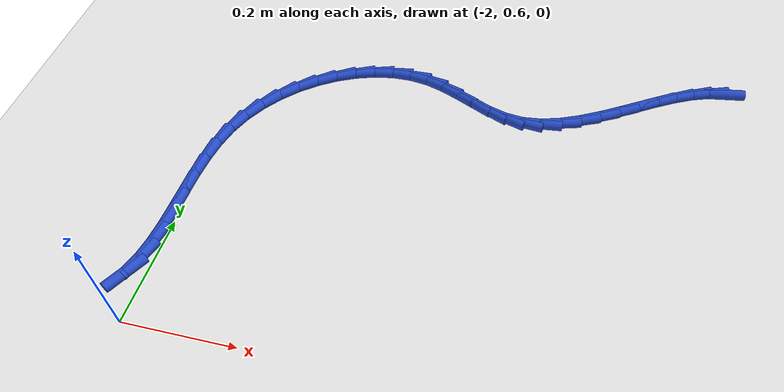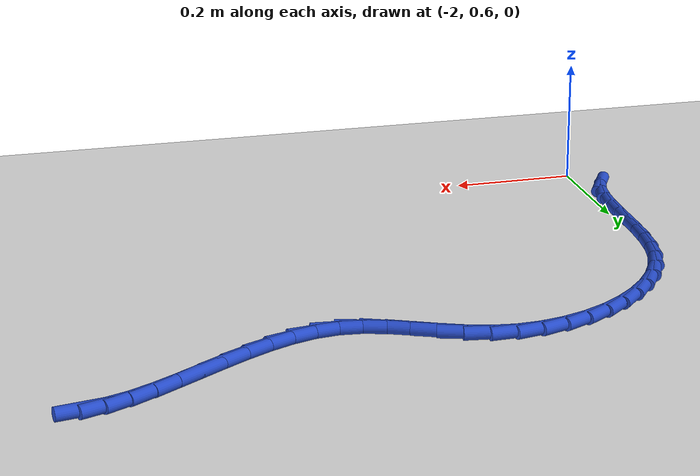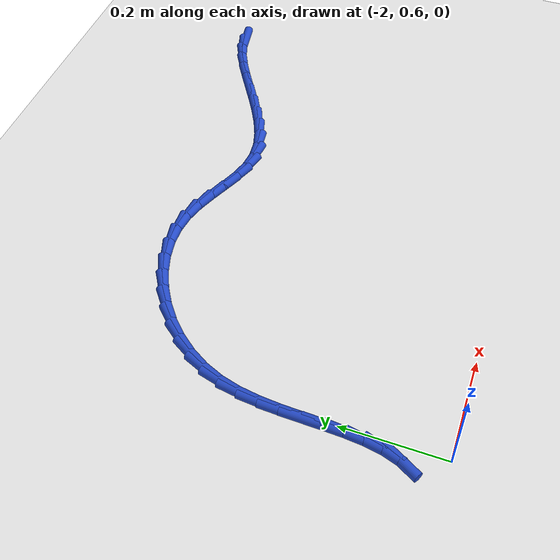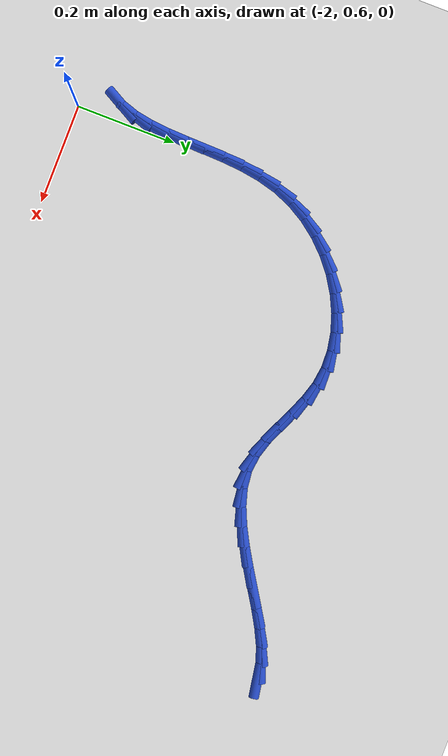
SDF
<sdf version="1.6">
 <world name="default">
  <model name="ground_plane">
   <static>1</static>
   <link name="link">
    <collision name="collision">
     <geometry><plane><normal>0 0 1</normal><size>100 100</size></plane></geometry>
     <surface><friction><ode><mu>100</mu><mu2>50</mu2></ode></friction></surface>
    </collision>
    <visual name="visual">
     <cast_shadows>0</cast_shadows>
     <geometry><plane><normal>0 0 1</normal><size>100 100</size></plane></geometry>
     <material>
      <script><uri>file://media/materials/scripts/gazebo.material</uri><name>Gazebo/WhiteGlow</name></script>
     </material>
    </visual>
   </link>
  </model>
  <model name="line">
   <link name="link_55">
    <pose>-1.0874645526092437 1.3264163241942417 0.01 0 1.57 0.16464403361150992</pose>
    <collision name="collision">
     <geometry><cylinder><radius>0.01</radius><length>0.08</length></cylinder></geometry>
    </collision>
    <visual name="visual">
     <material>
      <script><name>Gazebo/Blue</name><uri>file://media/materials/scripts/gazebo.material</uri></script>
     </material>
     <geometry><cylinder><radius>0.01</radius><length>0.08</length></cylinder></geometry>
    </visual>
   </link>
   <link name="link_56">
    <pose>-1.1166549831075208 1.321566391130453 0.01 0 1.57 0.34586061049891365</pose>
    <collision name="collision">
     <geometry><cylinder><radius>0.01</radius><length>0.08</length></cylinder></geometry>
    </collision>
    <visual name="visual">
     <material>
      <script><name>Gazebo/Blue</name><uri>file://media/materials/scripts/gazebo.material</uri></script>
     </material>
     <geometry><cylinder><radius>0.01</radius><length>0.08</length></cylinder></geometry>
    </visual>
   </link>
   <link name="link_57">
    <pose>-1.147344084330397 1.3105077392368027 0.01 0 1.57 0.4607003016405857</pose>
    <collision name="collision">
     <geometry><cylinder><radius>0.01</radius><length>0.08</length></cylinder></geometry>
    </collision>
    <visual name="visual">
     <material>
      <script><name>Gazebo/Blue</name><uri>file://media/materials/scripts/gazebo.material</uri></script>
     </material>
     <geometry><cylinder><radius>0.01</radius><length>0.08</length></cylinder></geometry>
    </visual>
   </link>
   <link name="link_58">
    <pose>-1.1793160176548019 1.2946393884830552 0.01 0 1.57 0.5282172132101465</pose>
    <collision name="collision">
     <geometry><cylinder><radius>0.01</radius><length>0.08</length></cylinder></geometry>
    </collision>
    <visual name="visual">
     <material>
      <script><name>Gazebo/Blue</name><uri>file://media/materials/scripts/gazebo.material</uri></script>
     </material>
     <geometry><cylinder><radius>0.01</radius><length>0.08</length></cylinder></geometry>
    </visual>
   </link>
   <link name="link_59">
    <pose>-1.2123549444576678 1.2753603588389746 0.01 0 1.57 0.5609170025685546</pose>
    <collision name="collision">
     <geometry><cylinder><radius>0.01</radius><length>0.08</length></cylinder></geometry>
    </collision>
    <visual name="visual">
     <material>
      <script><name>Gazebo/Blue</name><uri>file://media/materials/scripts/gazebo.material</uri></script>
     </material>
     <geometry><cylinder><radius>0.01</radius><length>0.08</length></cylinder></geometry>
    </visual>
   </link>
   <link name="link_60">
    <pose>-1.2462450261159246 1.254069670274325 0.01 0 1.57 0.5653388998060731</pose>
    <collision name="collision">
     <geometry><cylinder><radius>0.01</radius><length>0.08</length></cylinder></geometry>
    </collision>
    <visual name="visual">
     <material>
      <script><name>Gazebo/Blue</name><uri>file://media/materials/scripts/gazebo.material</uri></script>
     </material>
     <geometry><cylinder><radius>0.01</radius><length>0.08</length></cylinder></geometry>
    </visual>
   </link>
   <link name="link_61">
    <pose>-1.2807704240065036 1.23216634275887 0.01 0 1.57 0.5435701999124434</pose>
    <collision name="collision">
     <geometry><cylinder><radius>0.01</radius><length>0.08</length></cylinder></geometry>
    </collision>
    <visual name="visual">
     <material>
      <script><name>Gazebo/Blue</name><uri>file://media/materials/scripts/gazebo.material</uri></script>
     </material>
     <geometry><cylinder><radius>0.01</radius><length>0.08</length></cylinder></geometry>
    </visual>
   </link>
   <link name="link_62">
    <pose>-1.3157152995063355 1.2110493962623747 0.01 0 1.57 0.4940609550055763</pose>
    <collision name="collision">
     <geometry><cylinder><radius>0.01</radius><length>0.08</length></cylinder></geometry>
    </collision>
    <visual name="visual">
     <material>
      <script><name>Gazebo/Blue</name><uri>file://media/materials/scripts/gazebo.material</uri></script>
     </material>
     <geometry><cylinder><radius>0.01</radius><length>0.08</length></cylinder></geometry>
    </visual>
   </link>
   <link name="link_63">
    <pose>-1.3508638139923517 1.1921178507546024 0.01 0 1.57 0.4118127644955454</pose>
    <collision name="collision">
     <geometry><cylinder><radius>0.01</radius><length>0.08</length></cylinder></geometry>
    </collision>
    <visual name="visual">
     <material>
      <script><name>Gazebo/Blue</name><uri>file://media/materials/scripts/gazebo.material</uri></script>
     </material>
     <geometry><cylinder><radius>0.01</radius><length>0.08</length></cylinder></geometry>
    </visual>
   </link>
   <link name="link_64">
    <pose>-1.3860001288414825 1.176770726205318 0.01 0 1.57 0.28859497038842274</pose>
    <collision name="collision">
     <geometry><cylinder><radius>0.01</radius><length>0.08</length></cylinder></geometry>
    </collision>
    <visual name="visual">
     <material>
      <script><name>Gazebo/Blue</name><uri>file://media/materials/scripts/gazebo.material</uri></script>
     </material>
     <geometry><cylinder><radius>0.01</radius><length>0.08</length></cylinder></geometry>
    </visual>
   </link>
   <link name="link_65">
    <pose>-1.4209084054306593 1.1664070425842852 0.01 0 1.57 0.11500721039546787</pose>
    <collision name="collision">
     <geometry><cylinder><radius>0.01</radius><length>0.08</length></cylinder></geometry>
    </collision>
    <visual name="visual">
     <material>
      <script><name>Gazebo/Blue</name><uri>file://media/materials/scripts/gazebo.material</uri></script>
     </material>
     <geometry><cylinder><radius>0.01</radius><length>0.08</length></cylinder></geometry>
    </visual>
   </link>
   <link name="link_66">
    <pose>-1.4553728051368124 1.1624258198612671 0.01 0 1.57 -0.10520899492809196</pose>
    <collision name="collision">
     <geometry><cylinder><radius>0.01</radius><length>0.08</length></cylinder></geometry>
    </collision>
    <visual name="visual">
     <material>
      <script><name>Gazebo/Blue</name><uri>file://media/materials/scripts/gazebo.material</uri></script>
     </material>
     <geometry><cylinder><radius>0.01</radius><length>0.08</length></cylinder></geometry>
    </visual>
   </link>
   <link name="link_67">
    <pose>-1.4892094859385194 1.1659989363072776 0.01 0 1.57 -0.29095171063610425</pose>
    <collision name="collision">
     <geometry><cylinder><radius>0.01</radius><length>0.08</length></cylinder></geometry>
    </collision>
    <visual name="visual">
     <material>
      <script><name>Gazebo/Blue</name><uri>file://media/materials/scripts/gazebo.material</uri></script>
     </material>
     <geometry><cylinder><radius>0.01</radius><length>0.08</length></cylinder></geometry>
    </visual>
   </link>
   <link name="link_68">
    <pose>-1.522560349608142 1.1759858371575802 0.01 0 1.57 -0.3968031191720669</pose>
    <collision name="collision">
     <geometry><cylinder><radius>0.01</radius><length>0.08</length></cylinder></geometry>
    </collision>
    <visual name="visual">
     <material>
      <script><name>Gazebo/Blue</name><uri>file://media/materials/scripts/gazebo.material</uri></script>
     </material>
     <geometry><cylinder><radius>0.01</radius><length>0.08</length></cylinder></geometry>
    </visual>
   </link>
   <link name="link_69">
    <pose>-1.5557574066739857 1.1898963985197284 0.01 0 1.57 -0.430483257738452</pose>
    <collision name="collision">
     <geometry><cylinder><radius>0.01</radius><length>0.08</length></cylinder></geometry>
    </collision>
    <visual name="visual">
     <material>
      <script><name>Gazebo/Blue</name><uri>file://media/materials/scripts/gazebo.material</uri></script>
     </material>
     <geometry><cylinder><radius>0.01</radius><length>0.08</length></cylinder></geometry>
    </visual>
   </link>
   <link name="link_70">
    <pose>-1.589135046029348 1.2052236126499996 0.01 0 1.57 -0.39767721714755344</pose>
    <collision name="collision">
     <geometry><cylinder><radius>0.01</radius><length>0.08</length></cylinder></geometry>
    </collision>
    <visual name="visual">
     <material>
      <script><name>Gazebo/Blue</name><uri>file://media/materials/scripts/gazebo.material</uri></script>
     </material>
     <geometry><cylinder><radius>0.01</radius><length>0.08</length></cylinder></geometry>
    </visual>
   </link>
   <link name="link_71">
    <pose>-1.6230276565675221 1.2194604718046695 0.01 0 1.57 -0.29717472348617013</pose>
    <collision name="collision">
     <geometry><cylinder><radius>0.01</radius><length>0.08</length></cylinder></geometry>
    </collision>
    <visual name="visual">
     <material>
      <script><name>Gazebo/Blue</name><uri>file://media/materials/scripts/gazebo.material</uri></script>
     </material>
     <geometry><cylinder><radius>0.01</radius><length>0.08</length></cylinder></geometry>
    </visual>
   </link>
   <link name="link_72">
    <pose>-1.6577696271818045 1.2300999682400158 0.01 0 1.57 -0.13508129840582114</pose>
    <collision name="collision">
     <geometry><cylinder><radius>0.01</radius><length>0.08</length></cylinder></geometry>
    </collision>
    <visual name="visual">
     <material>
      <script><name>Gazebo/Blue</name><uri>file://media/materials/scripts/gazebo.material</uri></script>
     </material>
     <geometry><cylinder><radius>0.01</radius><length>0.08</length></cylinder></geometry>
    </visual>
   </link>
   <link name="link_73">
    <pose>-1.6935872632900912 1.2349679054588667 0.01 0 1.57 0.03197174831315225</pose>
    <collision name="collision">
     <geometry><cylinder><radius>0.01</radius><length>0.08</length></cylinder></geometry>
    </collision>
    <visual name="visual">
     <material>
      <script><name>Gazebo/Blue</name><uri>file://media/materials/scripts/gazebo.material</uri></script>
     </material>
     <geometry><cylinder><radius>0.01</radius><length>0.08</length></cylinder></geometry>
    </visual>
   </link>
   <link name="link_74">
    <pose>-1.7300864249963273 1.2338005656713136 0.01 0 1.57 0.18349414591373775</pose>
    <collision name="collision">
     <geometry><cylinder><radius>0.01</radius><length>0.08</length></cylinder></geometry>
    </collision>
    <visual name="visual">
     <material>
      <script><name>Gazebo/Blue</name><uri>file://media/materials/scripts/gazebo.material</uri></script>
     </material>
     <geometry><cylinder><radius>0.01</radius><length>0.08</length></cylinder></geometry>
    </visual>
   </link>
   <link name="link_75">
    <pose>-1.7666519951653212 1.2270146654475056 0.01 0 1.57 0.3212852747612042</pose>
    <collision name="collision">
     <geometry><cylinder><radius>0.01</radius><length>0.08</length></cylinder></geometry>
    </collision>
    <visual name="visual">
     <material>
      <script><name>Gazebo/Blue</name><uri>file://media/materials/scripts/gazebo.material</uri></script>
     </material>
     <geometry><cylinder><radius>0.01</radius><length>0.08</length></cylinder></geometry>
    </visual>
   </link>
   <link name="link_76">
    <pose>-1.8026685869960055 1.2150277517142882 0.01 0 1.57 0.4484829018805257</pose>
    <collision name="collision">
     <geometry><cylinder><radius>0.01</radius><length>0.08</length></cylinder></geometry>
    </collision>
    <visual name="visual">
     <material>
      <script><name>Gazebo/Blue</name><uri>file://media/materials/scripts/gazebo.material</uri></script>
     </material>
     <geometry><cylinder><radius>0.01</radius><length>0.08</length></cylinder></geometry>
    </visual>
   </link>
   <link name="link_77">
    <pose>-1.8375208136873113 1.1982573713985074 0.01 0 1.57 0.5686676105384731</pose>
    <collision name="collision">
     <geometry><cylinder><radius>0.01</radius><length>0.08</length></cylinder></geometry>
    </collision>
    <visual name="visual">
     <material>
      <script><name>Gazebo/Blue</name><uri>file://media/materials/scripts/gazebo.material</uri></script>
     </material>
     <geometry><cylinder><radius>0.01</radius><length>0.08</length></cylinder></geometry>
    </visual>
   </link>
   <link name="link_78">
    <pose>-1.8705932884381704 1.1771210714270073 0.01 0 1.57 0.6854372157209035</pose>
    <collision name="collision">
     <geometry><cylinder><radius>0.01</radius><length>0.08</length></cylinder></geometry>
    </collision>
    <visual name="visual">
     <material>
      <script><name>Gazebo/Blue</name><uri>file://media/materials/scripts/gazebo.material</uri></script>
     </material>
     <geometry><cylinder><radius>0.01</radius><length>0.08</length></cylinder></geometry>
    </visual>
   </link>
   <link name="link_79">
    <pose>-1.901270624447514 1.1520363987266333 0.01 0 1.57 0.8022524506681019</pose>
    <collision name="collision">
     <geometry><cylinder><radius>0.01</radius><length>0.08</length></cylinder></geometry>
    </collision>
    <visual name="visual">
     <material>
      <script><name>Gazebo/Blue</name><uri>file://media/materials/scripts/gazebo.material</uri></script>
     </material>
     <geometry><cylinder><radius>0.01</radius><length>0.08</length></cylinder></geometry>
    </visual>
   </link>
   <link name="link_80">
    <pose>-1.9289374349142732 1.1234209002242297 0.01 0 1.57 0.9223853341117962</pose>
    <collision name="collision">
     <geometry><cylinder><radius>0.01</radius><length>0.08</length></cylinder></geometry>
    </collision>
    <visual name="visual">
     <material>
      <script><name>Gazebo/Blue</name><uri>file://media/materials/scripts/gazebo.material</uri></script>
     </material>
     <geometry><cylinder><radius>0.01</radius><length>0.08</length></cylinder></geometry>
    </visual>
   </link>
   <link name="link_81">
    <pose>-1.9529783330373807 1.0916921228466434 0.01 0 1.57 1.0488418504591033</pose>
    <collision name="collision">
     <geometry><cylinder><radius>0.01</radius><length>0.08</length></cylinder></geometry>
    </collision>
    <visual name="visual">
     <material>
      <script><name>Gazebo/Blue</name><uri>file://media/materials/scripts/gazebo.material</uri></script>
     </material>
     <geometry><cylinder><radius>0.01</radius><length>0.08</length></cylinder></geometry>
    </visual>
   </link>
   <link name="link_82">
    <pose>-1.9727779320157661 1.0572676135207173 0.01 0 1.57 1.1840933940776888</pose>
    <collision name="collision">
     <geometry><cylinder><radius>0.01</radius><length>0.08</length></cylinder></geometry>
    </collision>
    <visual name="visual">
     <material>
      <script><name>Gazebo/Blue</name><uri>file://media/materials/scripts/gazebo.material</uri></script>
     </material>
     <geometry><cylinder><radius>0.01</radius><length>0.08</length></cylinder></geometry>
    </visual>
   </link>
   <link name="link_83">
    <pose>-1.987723377277526 1.0205651906223883 0.01 0 1.57 1.317220983208514</pose>
    <collision name="collision">
     <geometry><cylinder><radius>0.01</radius><length>0.08</length></cylinder></geometry>
    </collision>
    <visual name="visual">
     <material>
      <script><name>Gazebo/Blue</name><uri>file://media/materials/scripts/gazebo.material</uri></script>
     </material>
     <geometry><cylinder><radius>0.01</radius><length>0.08</length></cylinder></geometry>
    </visual>
   </link>
   <link name="link_84">
    <pose>-1.9977030776985634 0.9820564068062303 0.01 0 1.57 1.4208002400702815</pose>
    <collision name="collision">
     <geometry><cylinder><radius>0.01</radius><length>0.08</length></cylinder></geometry>
    </collision>
    <visual name="visual">
     <material>
      <script><name>Gazebo/Blue</name><uri>file://media/materials/scripts/gazebo.material</uri></script>
     </material>
     <geometry><cylinder><radius>0.01</radius><length>0.08</length></cylinder></geometry>
    </visual>
   </link>
   <link name="link_85">
    <pose>-2.0037068444693786 0.9423308824996054 0.01 0 1.57 1.492515523894807</pose>
    <collision name="collision">
     <geometry><cylinder><radius>0.01</radius><length>0.08</length></cylinder></geometry>
    </collision>
    <visual name="visual">
     <material>
      <script><name>Gazebo/Blue</name><uri>file://media/materials/scripts/gazebo.material</uri></script>
     </material>
     <geometry><cylinder><radius>0.01</radius><length>0.08</length></cylinder></geometry>
    </visual>
   </link>
   <link name="link_86">
    <pose>-2.0068709187682643 0.9019939350848398 0.01 0 1.57 1.5346070650813406</pose>
    <collision name="collision">
     <geometry><cylinder><radius>0.01</radius><length>0.08</length></cylinder></geometry>
    </collision>
    <visual name="visual">
     <material>
      <script><name>Gazebo/Blue</name><uri>file://media/materials/scripts/gazebo.material</uri></script>
     </material>
     <geometry><cylinder><radius>0.01</radius><length>0.08</length></cylinder></geometry>
    </visual>
   </link>
   <link name="link_87">
    <pose>-2.008331541773511 0.8616508819442584 0.01 0 1.57 1.54832083332745</pose>
    <collision name="collision">
     <geometry><cylinder><radius>0.01</radius><length>0.08</length></cylinder></geometry>
    </collision>
    <visual name="visual">
     <material>
      <script><name>Gazebo/Blue</name><uri>file://media/materials/scripts/gazebo.material</uri></script>
     </material>
     <geometry><cylinder><radius>0.01</radius><length>0.08</length></cylinder></geometry>
    </visual>
   </link>
   <link name="link_88">
    <pose>-2.009224954663411 0.8219070404601876 0.01 0 1.57 1.5328677154062968</pose>
    <collision name="collision">
     <geometry><cylinder><radius>0.01</radius><length>0.08</length></cylinder></geometry>
    </collision>
    <visual name="visual">
     <material>
      <script><name>Gazebo/Blue</name><uri>file://media/materials/scripts/gazebo.material</uri></script>
     </material>
     <geometry><cylinder><radius>0.01</radius><length>0.08</length></cylinder></geometry>
    </visual>
   </link>
   <link name="link_89">
    <pose>-2.0106873986162563 0.7833677280149521 0.01 0 1.57 1.4847646620593637</pose>
    <collision name="collision">
     <geometry><cylinder><radius>0.01</radius><length>0.08</length></cylinder></geometry>
    </collision>
    <visual name="visual">
     <material>
      <script><name>Gazebo/Blue</name><uri>file://media/materials/scripts/gazebo.material</uri></script>
     </material>
     <geometry><cylinder><radius>0.01</radius><length>0.08</length></cylinder></geometry>
    </visual>
   </link>
   <link name="link_90">
    <pose>-2.013855114810338 0.7466382619908785 0.01 0 1.57 1.3974311462652058</pose>
    <collision name="collision">
     <geometry><cylinder><radius>0.01</radius><length>0.08</length></cylinder></geometry>
    </collision>
    <visual name="visual">
     <material>
      <script><name>Gazebo/Blue</name><uri>file://media/materials/scripts/gazebo.material</uri></script>
     </material>
     <geometry><cylinder><radius>0.01</radius><length>0.08</length></cylinder></geometry>
    </visual>
   </link>
   <link name="link_91">
    <pose>-2.019864344423948 0.7123239597702914 0.01 0 1.57 1.2618773423525942</pose>
    <collision name="collision">
     <geometry><cylinder><radius>0.01</radius><length>0.08</length></cylinder></geometry>
    </collision>
    <visual name="visual">
     <material>
      <script><name>Gazebo/Blue</name><uri>file://media/materials/scripts/gazebo.material</uri></script>
     </material>
     <geometry><cylinder><radius>0.01</radius><length>0.08</length></cylinder></geometry>
    </visual>
   </link>
   <link name="link_92">
    <pose>-2.0298513286353783 0.6810301387355174 0.01 0 1.57 1.0711897140190447</pose>
    <collision name="collision">
     <geometry><cylinder><radius>0.01</radius><length>0.08</length></cylinder></geometry>
    </collision>
    <visual name="visual">
     <material>
      <script><name>Gazebo/Blue</name><uri>file://media/materials/scripts/gazebo.material</uri></script>
     </material>
     <geometry><cylinder><radius>0.01</radius><length>0.08</length></cylinder></geometry>
    </visual>
   </link>
  </model>
 </world>
</sdf>
